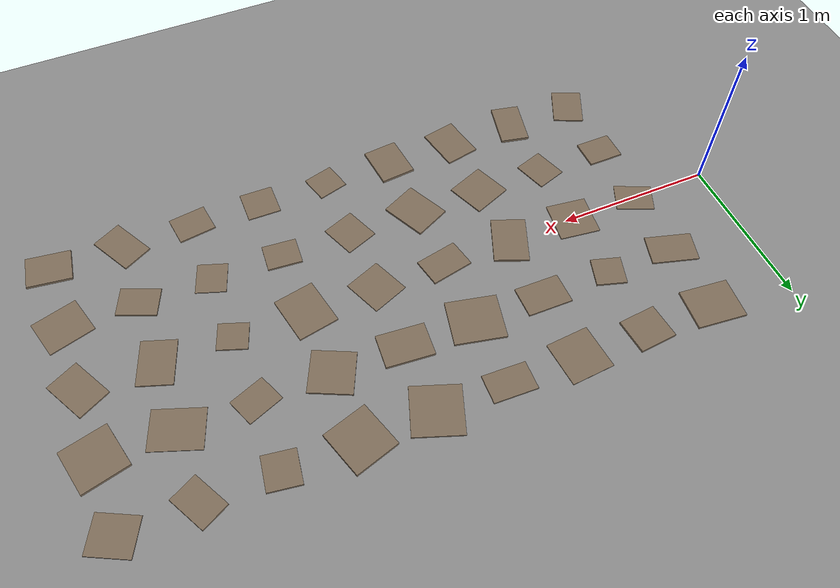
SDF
<sdf version="1.6">
 <world name="default">
  <include><uri>model://sun</uri></include>
  <model name="tracer_base_ground">
   <static>true</static>
   <link name="link">
    <collision name="collision">
     <geometry><plane><normal>0 0 1</normal><size>30 12</size></plane></geometry>
     <surface>
      <friction><ode><mu>0.8</mu><mu2>0.8</mu2><slip1>0.0</slip1><slip2>0.0</slip2></ode></friction>
      <contact>
       <ode><kp>1000000.0</kp><kd>100.0</kd><max_vel>0.01</max_vel><min_depth>0.001</min_depth></ode>
      </contact>
     </surface>
    </collision>
    <visual name="visual">
     <geometry><plane><normal>0 0 1</normal><size>30 12</size></plane></geometry>
     <material><ambient>0.45 0.45 0.45 1</ambient><diffuse>0.55 0.55 0.55 1</diffuse></material>
    </visual>
   </link>
  </model>
  <model name="rough_patch_0_0">
   <static>true</static>
   <pose>0.500 -0.900 0.0049 0 0 -0.4276</pose>
   <link name="link">
    <collision name="collision">
     <geometry><box><size>0.201 0.271 0.0099</size></box></geometry>
     <surface>
      <friction><ode><mu>0.8</mu><mu2>0.8</mu2><slip1>0.0</slip1><slip2>0.0</slip2></ode></friction>
      <contact>
       <ode><kp>1000000.0</kp><kd>100.0</kd><max_vel>0.01</max_vel><min_depth>0.001</min_depth></ode>
      </contact>
     </surface>
    </collision>
    <visual name="visual">
     <geometry><box><size>0.201 0.271 0.0099</size></box></geometry>
     <material><ambient>0.38 0.34 0.28 1</ambient><diffuse>0.50 0.43 0.35 1</diffuse></material>
    </visual>
   </link>
  </model>
  <model name="rough_patch_0_1">
   <static>true</static>
   <pose>0.500 -0.450 0.0065 0 0 0.0074</pose>
   <link name="link">
    <collision name="collision">
     <geometry><box><size>0.231 0.188 0.0130</size></box></geometry>
     <surface>
      <friction><ode><mu>0.8</mu><mu2>0.8</mu2><slip1>0.0</slip1><slip2>0.0</slip2></ode></friction>
      <contact>
       <ode><kp>1000000.0</kp><kd>100.0</kd><max_vel>0.01</max_vel><min_depth>0.001</min_depth></ode>
      </contact>
     </surface>
    </collision>
    <visual name="visual">
     <geometry><box><size>0.231 0.188 0.0130</size></box></geometry>
     <material><ambient>0.38 0.34 0.28 1</ambient><diffuse>0.50 0.43 0.35 1</diffuse></material>
    </visual>
   </link>
  </model>
  <model name="rough_patch_0_2">
   <static>true</static>
   <pose>0.500 0.000 0.0028 0 0 -0.4093</pose>
   <link name="link">
    <collision name="collision">
     <geometry><box><size>0.241 0.190 0.0056</size></box></geometry>
     <surface>
      <friction><ode><mu>0.8</mu><mu2>0.8</mu2><slip1>0.0</slip1><slip2>0.0</slip2></ode></friction>
      <contact>
       <ode><kp>1000000.0</kp><kd>100.0</kd><max_vel>0.01</max_vel><min_depth>0.001</min_depth></ode>
      </contact>
     </surface>
    </collision>
    <visual name="visual">
     <geometry><box><size>0.241 0.190 0.0056</size></box></geometry>
     <material><ambient>0.38 0.34 0.28 1</ambient><diffuse>0.50 0.43 0.35 1</diffuse></material>
    </visual>
   </link>
  </model>
  <model name="rough_patch_0_3">
   <static>true</static>
   <pose>0.500 0.450 0.0057 0 0 -0.2768</pose>
   <link name="link">
    <collision name="collision">
     <geometry><box><size>0.296 0.197 0.0114</size></box></geometry>
     <surface>
      <friction><ode><mu>0.8</mu><mu2>0.8</mu2><slip1>0.0</slip1><slip2>0.0</slip2></ode></friction>
      <contact>
       <ode><kp>1000000.0</kp><kd>100.0</kd><max_vel>0.01</max_vel><min_depth>0.001</min_depth></ode>
      </contact>
     </surface>
    </collision>
    <visual name="visual">
     <geometry><box><size>0.296 0.197 0.0114</size></box></geometry>
     <material><ambient>0.38 0.34 0.28 1</ambient><diffuse>0.50 0.43 0.35 1</diffuse></material>
    </visual>
   </link>
  </model>
  <model name="rough_patch_0_4">
   <static>true</static>
   <pose>0.500 0.900 0.0072 0 0 -0.1033</pose>
   <link name="link">
    <collision name="collision">
     <geometry><box><size>0.313 0.261 0.0144</size></box></geometry>
     <surface>
      <friction><ode><mu>0.8</mu><mu2>0.8</mu2><slip1>0.0</slip1><slip2>0.0</slip2></ode></friction>
      <contact>
       <ode><kp>1000000.0</kp><kd>100.0</kd><max_vel>0.01</max_vel><min_depth>0.001</min_depth></ode>
      </contact>
     </surface>
    </collision>
    <visual name="visual">
     <geometry><box><size>0.313 0.261 0.0144</size></box></geometry>
     <material><ambient>0.38 0.34 0.28 1</ambient><diffuse>0.50 0.43 0.35 1</diffuse></material>
    </visual>
   </link>
  </model>
  <model name="rough_patch_1_0">
   <static>true</static>
   <pose>0.950 -0.900 0.0098 0 0 -0.2104</pose>
   <link name="link">
    <collision name="collision">
     <geometry><box><size>0.187 0.300 0.0196</size></box></geometry>
     <surface>
      <friction><ode><mu>0.8</mu><mu2>0.8</mu2><slip1>0.0</slip1><slip2>0.0</slip2></ode></friction>
      <contact>
       <ode><kp>1000000.0</kp><kd>100.0</kd><max_vel>0.01</max_vel><min_depth>0.001</min_depth></ode>
      </contact>
     </surface>
    </collision>
    <visual name="visual">
     <geometry><box><size>0.187 0.300 0.0196</size></box></geometry>
     <material><ambient>0.38 0.34 0.28 1</ambient><diffuse>0.50 0.43 0.35 1</diffuse></material>
    </visual>
   </link>
  </model>
  <model name="rough_patch_1_1">
   <static>true</static>
   <pose>0.950 -0.450 0.0036 0 0 0.3161</pose>
   <link name="link">
    <collision name="collision">
     <geometry><box><size>0.196 0.223 0.0072</size></box></geometry>
     <surface>
      <friction><ode><mu>0.8</mu><mu2>0.8</mu2><slip1>0.0</slip1><slip2>0.0</slip2></ode></friction>
      <contact>
       <ode><kp>1000000.0</kp><kd>100.0</kd><max_vel>0.01</max_vel><min_depth>0.001</min_depth></ode>
      </contact>
     </surface>
    </collision>
    <visual name="visual">
     <geometry><box><size>0.196 0.223 0.0072</size></box></geometry>
     <material><ambient>0.38 0.34 0.28 1</ambient><diffuse>0.50 0.43 0.35 1</diffuse></material>
    </visual>
   </link>
  </model>
  <model name="rough_patch_1_2">
   <static>true</static>
   <pose>0.950 0.000 0.0039 0 0 -0.1276</pose>
   <link name="link">
    <collision name="collision">
     <geometry><box><size>0.261 0.269 0.0077</size></box></geometry>
     <surface>
      <friction><ode><mu>0.8</mu><mu2>0.8</mu2><slip1>0.0</slip1><slip2>0.0</slip2></ode></friction>
      <contact>
       <ode><kp>1000000.0</kp><kd>100.0</kd><max_vel>0.01</max_vel><min_depth>0.001</min_depth></ode>
      </contact>
     </surface>
    </collision>
    <visual name="visual">
     <geometry><box><size>0.261 0.269 0.0077</size></box></geometry>
     <material><ambient>0.38 0.34 0.28 1</ambient><diffuse>0.50 0.43 0.35 1</diffuse></material>
    </visual>
   </link>
  </model>
  <model name="rough_patch_1_3">
   <static>true</static>
   <pose>0.950 0.450 0.0066 0 0 -0.2940</pose>
   <link name="link">
    <collision name="collision">
     <geometry><box><size>0.189 0.188 0.0132</size></box></geometry>
     <surface>
      <friction><ode><mu>0.8</mu><mu2>0.8</mu2><slip1>0.0</slip1><slip2>0.0</slip2></ode></friction>
      <contact>
       <ode><kp>1000000.0</kp><kd>100.0</kd><max_vel>0.01</max_vel><min_depth>0.001</min_depth></ode>
      </contact>
     </surface>
    </collision>
    <visual name="visual">
     <geometry><box><size>0.189 0.188 0.0132</size></box></geometry>
     <material><ambient>0.38 0.34 0.28 1</ambient><diffuse>0.50 0.43 0.35 1</diffuse></material>
    </visual>
   </link>
  </model>
  <model name="rough_patch_1_4">
   <static>true</static>
   <pose>0.950 0.900 0.0076 0 0 0.0856</pose>
   <link name="link">
    <collision name="collision">
     <geometry><box><size>0.240 0.224 0.0152</size></box></geometry>
     <surface>
      <friction><ode><mu>0.8</mu><mu2>0.8</mu2><slip1>0.0</slip1><slip2>0.0</slip2></ode></friction>
      <contact>
       <ode><kp>1000000.0</kp><kd>100.0</kd><max_vel>0.01</max_vel><min_depth>0.001</min_depth></ode>
      </contact>
     </surface>
    </collision>
    <visual name="visual">
     <geometry><box><size>0.240 0.224 0.0152</size></box></geometry>
     <material><ambient>0.38 0.34 0.28 1</ambient><diffuse>0.50 0.43 0.35 1</diffuse></material>
    </visual>
   </link>
  </model>
  <model name="rough_patch_2_0">
   <static>true</static>
   <pose>1.400 -0.900 0.0059 0 0 0.1990</pose>
   <link name="link">
    <collision name="collision">
     <geometry><box><size>0.222 0.291 0.0118</size></box></geometry>
     <surface>
      <friction><ode><mu>0.8</mu><mu2>0.8</mu2><slip1>0.0</slip1><slip2>0.0</slip2></ode></friction>
      <contact>
       <ode><kp>1000000.0</kp><kd>100.0</kd><max_vel>0.01</max_vel><min_depth>0.001</min_depth></ode>
      </contact>
     </surface>
    </collision>
    <visual name="visual">
     <geometry><box><size>0.222 0.291 0.0118</size></box></geometry>
     <material><ambient>0.38 0.34 0.28 1</ambient><diffuse>0.50 0.43 0.35 1</diffuse></material>
    </visual>
   </link>
  </model>
  <model name="rough_patch_2_1">
   <static>true</static>
   <pose>1.400 -0.450 0.0043 0 0 0.3751</pose>
   <link name="link">
    <collision name="collision">
     <geometry><box><size>0.260 0.254 0.0087</size></box></geometry>
     <surface>
      <friction><ode><mu>0.8</mu><mu2>0.8</mu2><slip1>0.0</slip1><slip2>0.0</slip2></ode></friction>
      <contact>
       <ode><kp>1000000.0</kp><kd>100.0</kd><max_vel>0.01</max_vel><min_depth>0.001</min_depth></ode>
      </contact>
     </surface>
    </collision>
    <visual name="visual">
     <geometry><box><size>0.260 0.254 0.0087</size></box></geometry>
     <material><ambient>0.38 0.34 0.28 1</ambient><diffuse>0.50 0.43 0.35 1</diffuse></material>
    </visual>
   </link>
  </model>
  <model name="rough_patch_2_2">
   <static>true</static>
   <pose>1.400 0.000 0.0080 0 0 -0.3819</pose>
   <link name="link">
    <collision name="collision">
     <geometry><box><size>0.220 0.317 0.0159</size></box></geometry>
     <surface>
      <friction><ode><mu>0.8</mu><mu2>0.8</mu2><slip1>0.0</slip1><slip2>0.0</slip2></ode></friction>
      <contact>
       <ode><kp>1000000.0</kp><kd>100.0</kd><max_vel>0.01</max_vel><min_depth>0.001</min_depth></ode>
      </contact>
     </surface>
    </collision>
    <visual name="visual">
     <geometry><box><size>0.220 0.317 0.0159</size></box></geometry>
     <material><ambient>0.38 0.34 0.28 1</ambient><diffuse>0.50 0.43 0.35 1</diffuse></material>
    </visual>
   </link>
  </model>
  <model name="rough_patch_2_3">
   <static>true</static>
   <pose>1.400 0.450 0.0056 0 0 -0.0110</pose>
   <link name="link">
    <collision name="collision">
     <geometry><box><size>0.286 0.201 0.0113</size></box></geometry>
     <surface>
      <friction><ode><mu>0.8</mu><mu2>0.8</mu2><slip1>0.0</slip1><slip2>0.0</slip2></ode></friction>
      <contact>
       <ode><kp>1000000.0</kp><kd>100.0</kd><max_vel>0.01</max_vel><min_depth>0.001</min_depth></ode>
      </contact>
     </surface>
    </collision>
    <visual name="visual">
     <geometry><box><size>0.286 0.201 0.0113</size></box></geometry>
     <material><ambient>0.38 0.34 0.28 1</ambient><diffuse>0.50 0.43 0.35 1</diffuse></material>
    </visual>
   </link>
  </model>
  <model name="rough_patch_2_4">
   <static>true</static>
   <pose>1.400 0.900 0.0028 0 0 0.0730</pose>
   <link name="link">
    <collision name="collision">
     <geometry><box><size>0.274 0.287 0.0056</size></box></geometry>
     <surface>
      <friction><ode><mu>0.8</mu><mu2>0.8</mu2><slip1>0.0</slip1><slip2>0.0</slip2></ode></friction>
      <contact>
       <ode><kp>1000000.0</kp><kd>100.0</kd><max_vel>0.01</max_vel><min_depth>0.001</min_depth></ode>
      </contact>
     </surface>
    </collision>
    <visual name="visual">
     <geometry><box><size>0.274 0.287 0.0056</size></box></geometry>
     <material><ambient>0.38 0.34 0.28 1</ambient><diffuse>0.50 0.43 0.35 1</diffuse></material>
    </visual>
   </link>
  </model>
  <model name="rough_patch_3_0">
   <static>true</static>
   <pose>1.850 -0.900 0.0091 0 0 0.0944</pose>
   <link name="link">
    <collision name="collision">
     <geometry><box><size>0.224 0.277 0.0181</size></box></geometry>
     <surface>
      <friction><ode><mu>0.8</mu><mu2>0.8</mu2><slip1>0.0</slip1><slip2>0.0</slip2></ode></friction>
      <contact>
       <ode><kp>1000000.0</kp><kd>100.0</kd><max_vel>0.01</max_vel><min_depth>0.001</min_depth></ode>
      </contact>
     </surface>
    </collision>
    <visual name="visual">
     <geometry><box><size>0.224 0.277 0.0181</size></box></geometry>
     <material><ambient>0.38 0.34 0.28 1</ambient><diffuse>0.50 0.43 0.35 1</diffuse></material>
    </visual>
   </link>
  </model>
  <model name="rough_patch_3_1">
   <static>true</static>
   <pose>1.850 -0.450 0.0068 0 0 0.4447</pose>
   <link name="link">
    <collision name="collision">
     <geometry><box><size>0.244 0.298 0.0137</size></box></geometry>
     <surface>
      <friction><ode><mu>0.8</mu><mu2>0.8</mu2><slip1>0.0</slip1><slip2>0.0</slip2></ode></friction>
      <contact>
       <ode><kp>1000000.0</kp><kd>100.0</kd><max_vel>0.01</max_vel><min_depth>0.001</min_depth></ode>
      </contact>
     </surface>
    </collision>
    <visual name="visual">
     <geometry><box><size>0.244 0.298 0.0137</size></box></geometry>
     <material><ambient>0.38 0.34 0.28 1</ambient><diffuse>0.50 0.43 0.35 1</diffuse></material>
    </visual>
   </link>
  </model>
  <model name="rough_patch_3_2">
   <static>true</static>
   <pose>1.850 0.000 0.0061 0 0 0.2015</pose>
   <link name="link">
    <collision name="collision">
     <geometry><box><size>0.273 0.188 0.0121</size></box></geometry>
     <surface>
      <friction><ode><mu>0.8</mu><mu2>0.8</mu2><slip1>0.0</slip1><slip2>0.0</slip2></ode></friction>
      <contact>
       <ode><kp>1000000.0</kp><kd>100.0</kd><max_vel>0.01</max_vel><min_depth>0.001</min_depth></ode>
      </contact>
     </surface>
    </collision>
    <visual name="visual">
     <geometry><box><size>0.273 0.188 0.0121</size></box></geometry>
     <material><ambient>0.38 0.34 0.28 1</ambient><diffuse>0.50 0.43 0.35 1</diffuse></material>
    </visual>
   </link>
  </model>
  <model name="rough_patch_3_3">
   <static>true</static>
   <pose>1.850 0.450 0.0074 0 0 -0.2154</pose>
   <link name="link">
    <collision name="collision">
     <geometry><box><size>0.319 0.295 0.0147</size></box></geometry>
     <surface>
      <friction><ode><mu>0.8</mu><mu2>0.8</mu2><slip1>0.0</slip1><slip2>0.0</slip2></ode></friction>
      <contact>
       <ode><kp>1000000.0</kp><kd>100.0</kd><max_vel>0.01</max_vel><min_depth>0.001</min_depth></ode>
      </contact>
     </surface>
    </collision>
    <visual name="visual">
     <geometry><box><size>0.319 0.295 0.0147</size></box></geometry>
     <material><ambient>0.38 0.34 0.28 1</ambient><diffuse>0.50 0.43 0.35 1</diffuse></material>
    </visual>
   </link>
  </model>
  <model name="rough_patch_3_4">
   <static>true</static>
   <pose>1.850 0.900 0.0054 0 0 -0.0383</pose>
   <link name="link">
    <collision name="collision">
     <geometry><box><size>0.274 0.183 0.0108</size></box></geometry>
     <surface>
      <friction><ode><mu>0.8</mu><mu2>0.8</mu2><slip1>0.0</slip1><slip2>0.0</slip2></ode></friction>
      <contact>
       <ode><kp>1000000.0</kp><kd>100.0</kd><max_vel>0.01</max_vel><min_depth>0.001</min_depth></ode>
      </contact>
     </surface>
    </collision>
    <visual name="visual">
     <geometry><box><size>0.274 0.183 0.0108</size></box></geometry>
     <material><ambient>0.38 0.34 0.28 1</ambient><diffuse>0.50 0.43 0.35 1</diffuse></material>
    </visual>
   </link>
  </model>
  <model name="rough_patch_4_0">
   <static>true</static>
   <pose>2.300 -0.900 0.0038 0 0 0.2682</pose>
   <link name="link">
    <collision name="collision">
     <geometry><box><size>0.196 0.188 0.0075</size></box></geometry>
     <surface>
      <friction><ode><mu>0.8</mu><mu2>0.8</mu2><slip1>0.0</slip1><slip2>0.0</slip2></ode></friction>
      <contact>
       <ode><kp>1000000.0</kp><kd>100.0</kd><max_vel>0.01</max_vel><min_depth>0.001</min_depth></ode>
      </contact>
     </surface>
    </collision>
    <visual name="visual">
     <geometry><box><size>0.196 0.188 0.0075</size></box></geometry>
     <material><ambient>0.38 0.34 0.28 1</ambient><diffuse>0.50 0.43 0.35 1</diffuse></material>
    </visual>
   </link>
  </model>
  <model name="rough_patch_4_1">
   <static>true</static>
   <pose>2.300 -0.450 0.0035 0 0 0.3714</pose>
   <link name="link">
    <collision name="collision">
     <geometry><box><size>0.215 0.235 0.0069</size></box></geometry>
     <surface>
      <friction><ode><mu>0.8</mu><mu2>0.8</mu2><slip1>0.0</slip1><slip2>0.0</slip2></ode></friction>
      <contact>
       <ode><kp>1000000.0</kp><kd>100.0</kd><max_vel>0.01</max_vel><min_depth>0.001</min_depth></ode>
      </contact>
     </surface>
    </collision>
    <visual name="visual">
     <geometry><box><size>0.215 0.235 0.0069</size></box></geometry>
     <material><ambient>0.38 0.34 0.28 1</ambient><diffuse>0.50 0.43 0.35 1</diffuse></material>
    </visual>
   </link>
  </model>
  <model name="rough_patch_4_2">
   <static>true</static>
   <pose>2.300 0.000 0.0031 0 0 0.3834</pose>
   <link name="link">
    <collision name="collision">
     <geometry><box><size>0.243 0.257 0.0062</size></box></geometry>
     <surface>
      <friction><ode><mu>0.8</mu><mu2>0.8</mu2><slip1>0.0</slip1><slip2>0.0</slip2></ode></friction>
      <contact>
       <ode><kp>1000000.0</kp><kd>100.0</kd><max_vel>0.01</max_vel><min_depth>0.001</min_depth></ode>
      </contact>
     </surface>
    </collision>
    <visual name="visual">
     <geometry><box><size>0.243 0.257 0.0062</size></box></geometry>
     <material><ambient>0.38 0.34 0.28 1</ambient><diffuse>0.50 0.43 0.35 1</diffuse></material>
    </visual>
   </link>
  </model>
  <model name="rough_patch_4_3">
   <static>true</static>
   <pose>2.300 0.450 0.0086 0 0 -0.0847</pose>
   <link name="link">
    <collision name="collision">
     <geometry><box><size>0.301 0.219 0.0173</size></box></geometry>
     <surface>
      <friction><ode><mu>0.8</mu><mu2>0.8</mu2><slip1>0.0</slip1><slip2>0.0</slip2></ode></friction>
      <contact>
       <ode><kp>1000000.0</kp><kd>100.0</kd><max_vel>0.01</max_vel><min_depth>0.001</min_depth></ode>
      </contact>
     </surface>
    </collision>
    <visual name="visual">
     <geometry><box><size>0.301 0.219 0.0173</size></box></geometry>
     <material><ambient>0.38 0.34 0.28 1</ambient><diffuse>0.50 0.43 0.35 1</diffuse></material>
    </visual>
   </link>
  </model>
  <model name="rough_patch_4_4">
   <static>true</static>
   <pose>2.300 0.900 0.0052 0 0 -0.3491</pose>
   <link name="link">
    <collision name="collision">
     <geometry><box><size>0.304 0.314 0.0104</size></box></geometry>
     <surface>
      <friction><ode><mu>0.8</mu><mu2>0.8</mu2><slip1>0.0</slip1><slip2>0.0</slip2></ode></friction>
      <contact>
       <ode><kp>1000000.0</kp><kd>100.0</kd><max_vel>0.01</max_vel><min_depth>0.001</min_depth></ode>
      </contact>
     </surface>
    </collision>
    <visual name="visual">
     <geometry><box><size>0.304 0.314 0.0104</size></box></geometry>
     <material><ambient>0.38 0.34 0.28 1</ambient><diffuse>0.50 0.43 0.35 1</diffuse></material>
    </visual>
   </link>
  </model>
  <model name="rough_patch_5_0">
   <static>true</static>
   <pose>2.750 -0.900 0.0038 0 0 -0.0150</pose>
   <link name="link">
    <collision name="collision">
     <geometry><box><size>0.212 0.213 0.0076</size></box></geometry>
     <surface>
      <friction><ode><mu>0.8</mu><mu2>0.8</mu2><slip1>0.0</slip1><slip2>0.0</slip2></ode></friction>
      <contact>
       <ode><kp>1000000.0</kp><kd>100.0</kd><max_vel>0.01</max_vel><min_depth>0.001</min_depth></ode>
      </contact>
     </surface>
    </collision>
    <visual name="visual">
     <geometry><box><size>0.212 0.213 0.0076</size></box></geometry>
     <material><ambient>0.38 0.34 0.28 1</ambient><diffuse>0.50 0.43 0.35 1</diffuse></material>
    </visual>
   </link>
  </model>
  <model name="rough_patch_5_1">
   <static>true</static>
   <pose>2.750 -0.450 0.0069 0 0 -0.0811</pose>
   <link name="link">
    <collision name="collision">
     <geometry><box><size>0.217 0.181 0.0138</size></box></geometry>
     <surface>
      <friction><ode><mu>0.8</mu><mu2>0.8</mu2><slip1>0.0</slip1><slip2>0.0</slip2></ode></friction>
      <contact>
       <ode><kp>1000000.0</kp><kd>100.0</kd><max_vel>0.01</max_vel><min_depth>0.001</min_depth></ode>
      </contact>
     </surface>
    </collision>
    <visual name="visual">
     <geometry><box><size>0.217 0.181 0.0138</size></box></geometry>
     <material><ambient>0.38 0.34 0.28 1</ambient><diffuse>0.50 0.43 0.35 1</diffuse></material>
    </visual>
   </link>
  </model>
  <model name="rough_patch_5_2">
   <static>true</static>
   <pose>2.750 0.000 0.0053 0 0 0.1905</pose>
   <link name="link">
    <collision name="collision">
     <geometry><box><size>0.259 0.313 0.0105</size></box></geometry>
     <surface>
      <friction><ode><mu>0.8</mu><mu2>0.8</mu2><slip1>0.0</slip1><slip2>0.0</slip2></ode></friction>
      <contact>
       <ode><kp>1000000.0</kp><kd>100.0</kd><max_vel>0.01</max_vel><min_depth>0.001</min_depth></ode>
      </contact>
     </surface>
    </collision>
    <visual name="visual">
     <geometry><box><size>0.259 0.313 0.0105</size></box></geometry>
     <material><ambient>0.38 0.34 0.28 1</ambient><diffuse>0.50 0.43 0.35 1</diffuse></material>
    </visual>
   </link>
  </model>
  <model name="rough_patch_5_3">
   <static>true</static>
   <pose>2.750 0.450 0.0064 0 0 -0.4460</pose>
   <link name="link">
    <collision name="collision">
     <geometry><box><size>0.266 0.275 0.0127</size></box></geometry>
     <surface>
      <friction><ode><mu>0.8</mu><mu2>0.8</mu2><slip1>0.0</slip1><slip2>0.0</slip2></ode></friction>
      <contact>
       <ode><kp>1000000.0</kp><kd>100.0</kd><max_vel>0.01</max_vel><min_depth>0.001</min_depth></ode>
      </contact>
     </surface>
    </collision>
    <visual name="visual">
     <geometry><box><size>0.266 0.275 0.0127</size></box></geometry>
     <material><ambient>0.38 0.34 0.28 1</ambient><diffuse>0.50 0.43 0.35 1</diffuse></material>
    </visual>
   </link>
  </model>
  <model name="rough_patch_5_4">
   <static>true</static>
   <pose>2.750 0.900 0.0092 0 0 0.2979</pose>
   <link name="link">
    <collision name="collision">
     <geometry><box><size>0.289 0.302 0.0185</size></box></geometry>
     <surface>
      <friction><ode><mu>0.8</mu><mu2>0.8</mu2><slip1>0.0</slip1><slip2>0.0</slip2></ode></friction>
      <contact>
       <ode><kp>1000000.0</kp><kd>100.0</kd><max_vel>0.01</max_vel><min_depth>0.001</min_depth></ode>
      </contact>
     </surface>
    </collision>
    <visual name="visual">
     <geometry><box><size>0.289 0.302 0.0185</size></box></geometry>
     <material><ambient>0.38 0.34 0.28 1</ambient><diffuse>0.50 0.43 0.35 1</diffuse></material>
    </visual>
   </link>
  </model>
  <model name="rough_patch_6_0">
   <static>true</static>
   <pose>3.200 -0.900 0.0054 0 0 0.1343</pose>
   <link name="link">
    <collision name="collision">
     <geometry><box><size>0.236 0.194 0.0109</size></box></geometry>
     <surface>
      <friction><ode><mu>0.8</mu><mu2>0.8</mu2><slip1>0.0</slip1><slip2>0.0</slip2></ode></friction>
      <contact>
       <ode><kp>1000000.0</kp><kd>100.0</kd><max_vel>0.01</max_vel><min_depth>0.001</min_depth></ode>
      </contact>
     </surface>
    </collision>
    <visual name="visual">
     <geometry><box><size>0.236 0.194 0.0109</size></box></geometry>
     <material><ambient>0.38 0.34 0.28 1</ambient><diffuse>0.50 0.43 0.35 1</diffuse></material>
    </visual>
   </link>
  </model>
  <model name="rough_patch_6_1">
   <static>true</static>
   <pose>3.200 -0.450 0.0030 0 0 -0.3377</pose>
   <link name="link">
    <collision name="collision">
     <geometry><box><size>0.189 0.209 0.0059</size></box></geometry>
     <surface>
      <friction><ode><mu>0.8</mu><mu2>0.8</mu2><slip1>0.0</slip1><slip2>0.0</slip2></ode></friction>
      <contact>
       <ode><kp>1000000.0</kp><kd>100.0</kd><max_vel>0.01</max_vel><min_depth>0.001</min_depth></ode>
      </contact>
     </surface>
    </collision>
    <visual name="visual">
     <geometry><box><size>0.189 0.209 0.0059</size></box></geometry>
     <material><ambient>0.38 0.34 0.28 1</ambient><diffuse>0.50 0.43 0.35 1</diffuse></material>
    </visual>
   </link>
  </model>
  <model name="rough_patch_6_2">
   <static>true</static>
   <pose>3.200 0.000 0.0051 0 0 -0.3487</pose>
   <link name="link">
    <collision name="collision">
     <geometry><box><size>0.187 0.180 0.0101</size></box></geometry>
     <surface>
      <friction><ode><mu>0.8</mu><mu2>0.8</mu2><slip1>0.0</slip1><slip2>0.0</slip2></ode></friction>
      <contact>
       <ode><kp>1000000.0</kp><kd>100.0</kd><max_vel>0.01</max_vel><min_depth>0.001</min_depth></ode>
      </contact>
     </surface>
    </collision>
    <visual name="visual">
     <geometry><box><size>0.187 0.180 0.0101</size></box></geometry>
     <material><ambient>0.38 0.34 0.28 1</ambient><diffuse>0.50 0.43 0.35 1</diffuse></material>
    </visual>
   </link>
  </model>
  <model name="rough_patch_6_3">
   <static>true</static>
   <pose>3.200 0.450 0.0033 0 0 0.3743</pose>
   <link name="link">
    <collision name="collision">
     <geometry><box><size>0.231 0.184 0.0065</size></box></geometry>
     <surface>
      <friction><ode><mu>0.8</mu><mu2>0.8</mu2><slip1>0.0</slip1><slip2>0.0</slip2></ode></friction>
      <contact>
       <ode><kp>1000000.0</kp><kd>100.0</kd><max_vel>0.01</max_vel><min_depth>0.001</min_depth></ode>
      </contact>
     </surface>
    </collision>
    <visual name="visual">
     <geometry><box><size>0.231 0.184 0.0065</size></box></geometry>
     <material><ambient>0.38 0.34 0.28 1</ambient><diffuse>0.50 0.43 0.35 1</diffuse></material>
    </visual>
   </link>
  </model>
  <model name="rough_patch_6_4">
   <static>true</static>
   <pose>3.200 0.900 0.0071 0 0 -0.1526</pose>
   <link name="link">
    <collision name="collision">
     <geometry><box><size>0.201 0.215 0.0142</size></box></geometry>
     <surface>
      <friction><ode><mu>0.8</mu><mu2>0.8</mu2><slip1>0.0</slip1><slip2>0.0</slip2></ode></friction>
      <contact>
       <ode><kp>1000000.0</kp><kd>100.0</kd><max_vel>0.01</max_vel><min_depth>0.001</min_depth></ode>
      </contact>
     </surface>
    </collision>
    <visual name="visual">
     <geometry><box><size>0.201 0.215 0.0142</size></box></geometry>
     <material><ambient>0.38 0.34 0.28 1</ambient><diffuse>0.50 0.43 0.35 1</diffuse></material>
    </visual>
   </link>
  </model>
  <model name="rough_patch_7_0">
   <static>true</static>
   <pose>3.650 -0.900 0.0052 0 0 0.4931</pose>
   <link name="link">
    <collision name="collision">
     <geometry><box><size>0.197 0.299 0.0105</size></box></geometry>
     <surface>
      <friction><ode><mu>0.8</mu><mu2>0.8</mu2><slip1>0.0</slip1><slip2>0.0</slip2></ode></friction>
      <contact>
       <ode><kp>1000000.0</kp><kd>100.0</kd><max_vel>0.01</max_vel><min_depth>0.001</min_depth></ode>
      </contact>
     </surface>
    </collision>
    <visual name="visual">
     <geometry><box><size>0.197 0.299 0.0105</size></box></geometry>
     <material><ambient>0.38 0.34 0.28 1</ambient><diffuse>0.50 0.43 0.35 1</diffuse></material>
    </visual>
   </link>
  </model>
  <model name="rough_patch_7_1">
   <static>true</static>
   <pose>3.650 -0.450 0.0060 0 0 -0.3978</pose>
   <link name="link">
    <collision name="collision">
     <geometry><box><size>0.248 0.192 0.0120</size></box></geometry>
     <surface>
      <friction><ode><mu>0.8</mu><mu2>0.8</mu2><slip1>0.0</slip1><slip2>0.0</slip2></ode></friction>
      <contact>
       <ode><kp>1000000.0</kp><kd>100.0</kd><max_vel>0.01</max_vel><min_depth>0.001</min_depth></ode>
      </contact>
     </surface>
    </collision>
    <visual name="visual">
     <geometry><box><size>0.248 0.192 0.0120</size></box></geometry>
     <material><ambient>0.38 0.34 0.28 1</ambient><diffuse>0.50 0.43 0.35 1</diffuse></material>
    </visual>
   </link>
  </model>
  <model name="rough_patch_7_2">
   <static>true</static>
   <pose>3.650 0.000 0.0051 0 0 -0.3386</pose>
   <link name="link">
    <collision name="collision">
     <geometry><box><size>0.217 0.296 0.0101</size></box></geometry>
     <surface>
      <friction><ode><mu>0.8</mu><mu2>0.8</mu2><slip1>0.0</slip1><slip2>0.0</slip2></ode></friction>
      <contact>
       <ode><kp>1000000.0</kp><kd>100.0</kd><max_vel>0.01</max_vel><min_depth>0.001</min_depth></ode>
      </contact>
     </surface>
    </collision>
    <visual name="visual">
     <geometry><box><size>0.217 0.296 0.0101</size></box></geometry>
     <material><ambient>0.38 0.34 0.28 1</ambient><diffuse>0.50 0.43 0.35 1</diffuse></material>
    </visual>
   </link>
  </model>
  <model name="rough_patch_7_3">
   <static>true</static>
   <pose>3.650 0.450 0.0027 0 0 -0.3534</pose>
   <link name="link">
    <collision name="collision">
     <geometry><box><size>0.313 0.254 0.0053</size></box></geometry>
     <surface>
      <friction><ode><mu>0.8</mu><mu2>0.8</mu2><slip1>0.0</slip1><slip2>0.0</slip2></ode></friction>
      <contact>
       <ode><kp>1000000.0</kp><kd>100.0</kd><max_vel>0.01</max_vel><min_depth>0.001</min_depth></ode>
      </contact>
     </surface>
    </collision>
    <visual name="visual">
     <geometry><box><size>0.313 0.254 0.0053</size></box></geometry>
     <material><ambient>0.38 0.34 0.28 1</ambient><diffuse>0.50 0.43 0.35 1</diffuse></material>
    </visual>
   </link>
  </model>
  <model name="rough_patch_7_4">
   <static>true</static>
   <pose>3.650 0.900 0.0066 0 0 0.4785</pose>
   <link name="link">
    <collision name="collision">
     <geometry><box><size>0.184 0.254 0.0131</size></box></geometry>
     <surface>
      <friction><ode><mu>0.8</mu><mu2>0.8</mu2><slip1>0.0</slip1><slip2>0.0</slip2></ode></friction>
      <contact>
       <ode><kp>1000000.0</kp><kd>100.0</kd><max_vel>0.01</max_vel><min_depth>0.001</min_depth></ode>
      </contact>
     </surface>
    </collision>
    <visual name="visual">
     <geometry><box><size>0.184 0.254 0.0131</size></box></geometry>
     <material><ambient>0.38 0.34 0.28 1</ambient><diffuse>0.50 0.43 0.35 1</diffuse></material>
    </visual>
   </link>
  </model>
  <model name="rough_patch_8_0">
   <static>true</static>
   <pose>4.100 -0.900 0.0090 0 0 -0.1333</pose>
   <link name="link">
    <collision name="collision">
     <geometry><box><size>0.277 0.217 0.0179</size></box></geometry>
     <surface>
      <friction><ode><mu>0.8</mu><mu2>0.8</mu2><slip1>0.0</slip1><slip2>0.0</slip2></ode></friction>
      <contact>
       <ode><kp>1000000.0</kp><kd>100.0</kd><max_vel>0.01</max_vel><min_depth>0.001</min_depth></ode>
      </contact>
     </surface>
    </collision>
    <visual name="visual">
     <geometry><box><size>0.277 0.217 0.0179</size></box></geometry>
     <material><ambient>0.38 0.34 0.28 1</ambient><diffuse>0.50 0.43 0.35 1</diffuse></material>
    </visual>
   </link>
  </model>
  <model name="rough_patch_8_1">
   <static>true</static>
   <pose>4.100 -0.450 0.0038 0 0 0.2791</pose>
   <link name="link">
    <collision name="collision">
     <geometry><box><size>0.288 0.255 0.0075</size></box></geometry>
     <surface>
      <friction><ode><mu>0.8</mu><mu2>0.8</mu2><slip1>0.0</slip1><slip2>0.0</slip2></ode></friction>
      <contact>
       <ode><kp>1000000.0</kp><kd>100.0</kd><max_vel>0.01</max_vel><min_depth>0.001</min_depth></ode>
      </contact>
     </surface>
    </collision>
    <visual name="visual">
     <geometry><box><size>0.288 0.255 0.0075</size></box></geometry>
     <material><ambient>0.38 0.34 0.28 1</ambient><diffuse>0.50 0.43 0.35 1</diffuse></material>
    </visual>
   </link>
  </model>
  <model name="rough_patch_8_2">
   <static>true</static>
   <pose>4.100 0.000 0.0050 0 0 0.4849</pose>
   <link name="link">
    <collision name="collision">
     <geometry><box><size>0.211 0.294 0.0099</size></box></geometry>
     <surface>
      <friction><ode><mu>0.8</mu><mu2>0.8</mu2><slip1>0.0</slip1><slip2>0.0</slip2></ode></friction>
      <contact>
       <ode><kp>1000000.0</kp><kd>100.0</kd><max_vel>0.01</max_vel><min_depth>0.001</min_depth></ode>
      </contact>
     </surface>
    </collision>
    <visual name="visual">
     <geometry><box><size>0.211 0.294 0.0099</size></box></geometry>
     <material><ambient>0.38 0.34 0.28 1</ambient><diffuse>0.50 0.43 0.35 1</diffuse></material>
    </visual>
   </link>
  </model>
  <model name="rough_patch_8_3">
   <static>true</static>
   <pose>4.100 0.450 0.0089 0 0 0.2399</pose>
   <link name="link">
    <collision name="collision">
     <geometry><box><size>0.293 0.295 0.0178</size></box></geometry>
     <surface>
      <friction><ode><mu>0.8</mu><mu2>0.8</mu2><slip1>0.0</slip1><slip2>0.0</slip2></ode></friction>
      <contact>
       <ode><kp>1000000.0</kp><kd>100.0</kd><max_vel>0.01</max_vel><min_depth>0.001</min_depth></ode>
      </contact>
     </surface>
    </collision>
    <visual name="visual">
     <geometry><box><size>0.293 0.295 0.0178</size></box></geometry>
     <material><ambient>0.38 0.34 0.28 1</ambient><diffuse>0.50 0.43 0.35 1</diffuse></material>
    </visual>
   </link>
  </model>
  <model name="rough_patch_8_4">
   <static>true</static>
   <pose>4.100 0.900 0.0042 0 0 -0.4710</pose>
   <link name="link">
    <collision name="collision">
     <geometry><box><size>0.252 0.230 0.0084</size></box></geometry>
     <surface>
      <friction><ode><mu>0.8</mu><mu2>0.8</mu2><slip1>0.0</slip1><slip2>0.0</slip2></ode></friction>
      <contact>
       <ode><kp>1000000.0</kp><kd>100.0</kd><max_vel>0.01</max_vel><min_depth>0.001</min_depth></ode>
      </contact>
     </surface>
    </collision>
    <visual name="visual">
     <geometry><box><size>0.252 0.230 0.0084</size></box></geometry>
     <material><ambient>0.38 0.34 0.28 1</ambient><diffuse>0.50 0.43 0.35 1</diffuse></material>
    </visual>
   </link>
  </model>
 </world>
</sdf>
